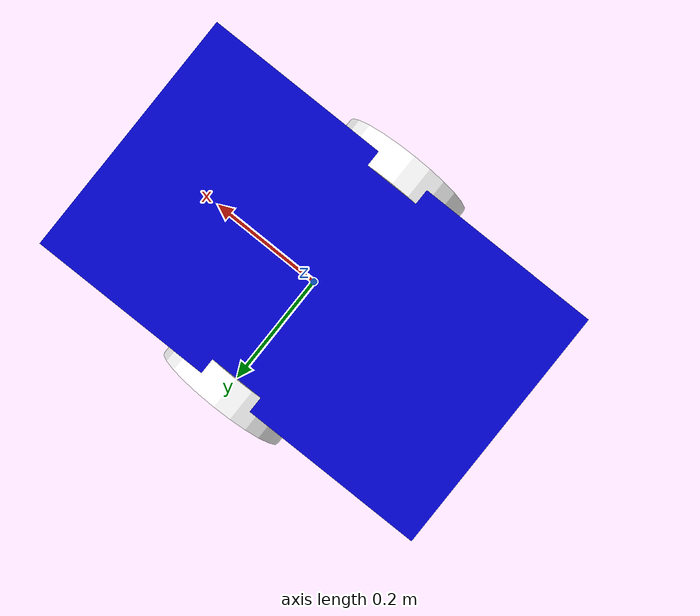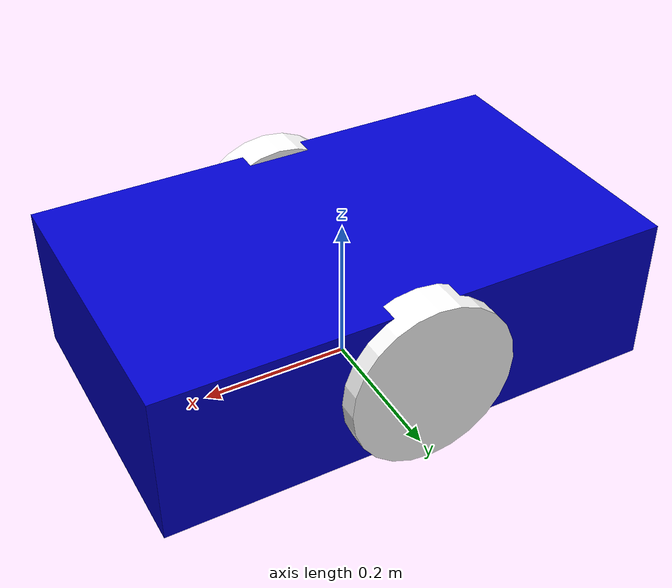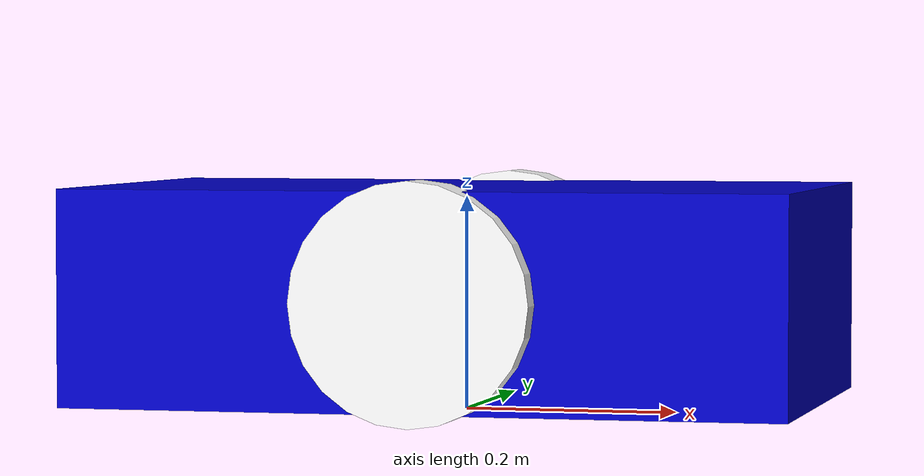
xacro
<?xml version="1.0"?>
<robot xmlns:xacro="http://www.ros.org/wiki/xacro" name="motor_drive">

  <material name="blue">
    <color rgba="0 0 0.8 1"/>
  </material>

  <material name="white">
    <color rgba="1 1 1 1"/>
  </material>

  <link name="world"/>

  <xacro:property name="width" value="0.4" />
  <xacro:property name="bodylen" value="0.672" />
  <xacro:property name="bodyheight" value="0.2" />

  <link name="base_link">
    <visual>
        <geometry>
            <box size="${bodylen} ${width} ${bodyheight}"/>
        </geometry>
        <origin xyz="0 0 0.11" rpy="0 0 0"/>
        <material name="blue"/>
    </visual>
    <collision>
        <geometry>
            <box size="${bodylen} ${width} ${bodyheight}"/>
        </geometry>
    </collision>
  </link>

  <joint name="base" type="fixed">
        <parent link="world"/>
        <child link="base_link"/>
        <origin xyz="0 0 0" rpy="0 0 0"/>
  </joint>

  <link name="wheel_right">
    <visual>
      <geometry>
          <cylinder radius="0.11" length="0.05"/>
      </geometry>
      <origin xyz="0 0 0" rpy="0 0 0"/>
      <material name="white"/>
    </visual>
    <collision>
      <geometry>
          <cylinder radius="0.11" length="0.05"/>
      </geometry>
    </collision>
  </link>

  <joint name="joint_1" type="continuous">
        <parent link="base_link"/>
        <child link="wheel_right"/>
        <origin xyz="0 -${width/2} 0.11" rpy="${pi/2} 0 0"/>
        <axis xyz="0 0 1"/>
  </joint>

  <link name="wheel_left">
    <visual>
      <geometry>
          <cylinder radius="0.11" length="0.05"/>
      </geometry>
      <origin xyz="0 0 0" rpy="0 0 0"/>
      <material name="white"/>
    </visual>
    <collision>
      <geometry>
          <cylinder radius="0.11" length="0.05"/>
      </geometry>
    </collision>
  </link>

  <joint name="joint_2" type="continuous">
        <parent link="base_link"/>
        <child link="wheel_left"/>
        <origin xyz="0 ${width/2} 0.11" rpy="-${pi/2} 0 0"/>
        <axis xyz="0 0 1"/>
  </joint>

  <xacro:include filename="$(find ethercat_diff_drive)/description/ros2_control/motor_diff_drive.ros2_control.xacro" />
  <xacro:motor_drive/>
</robot>
